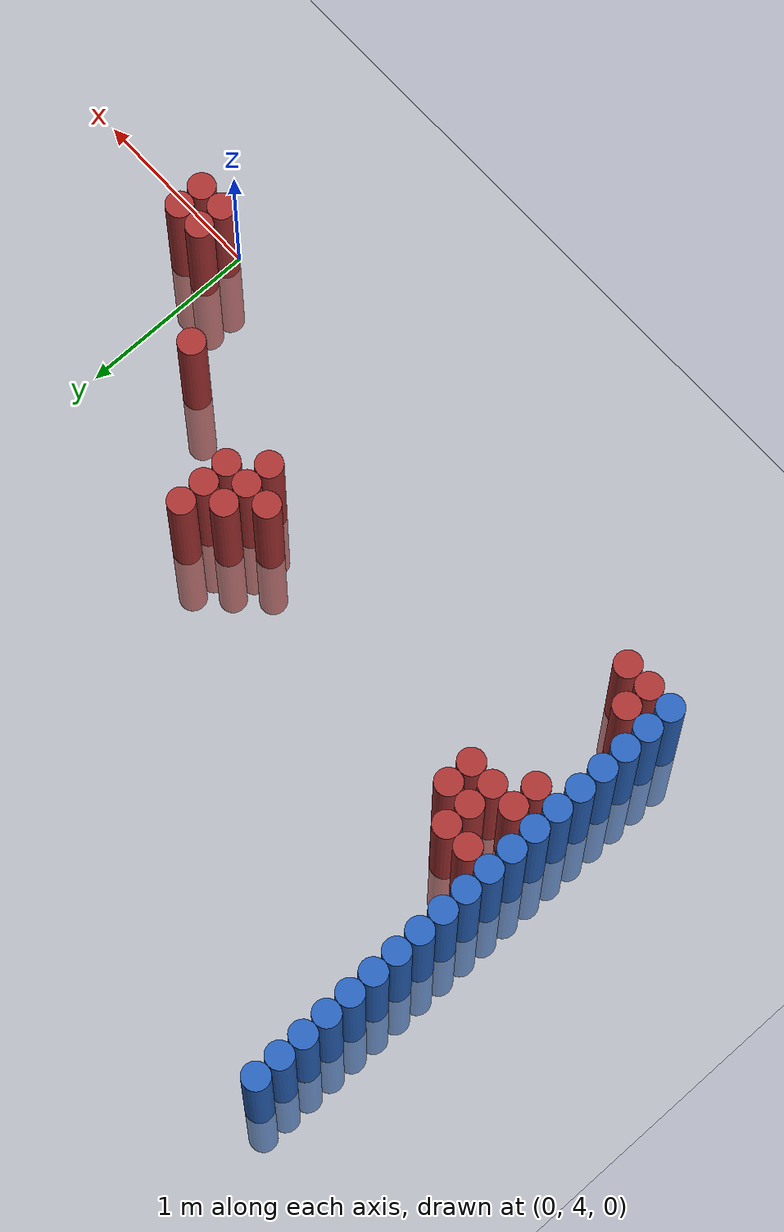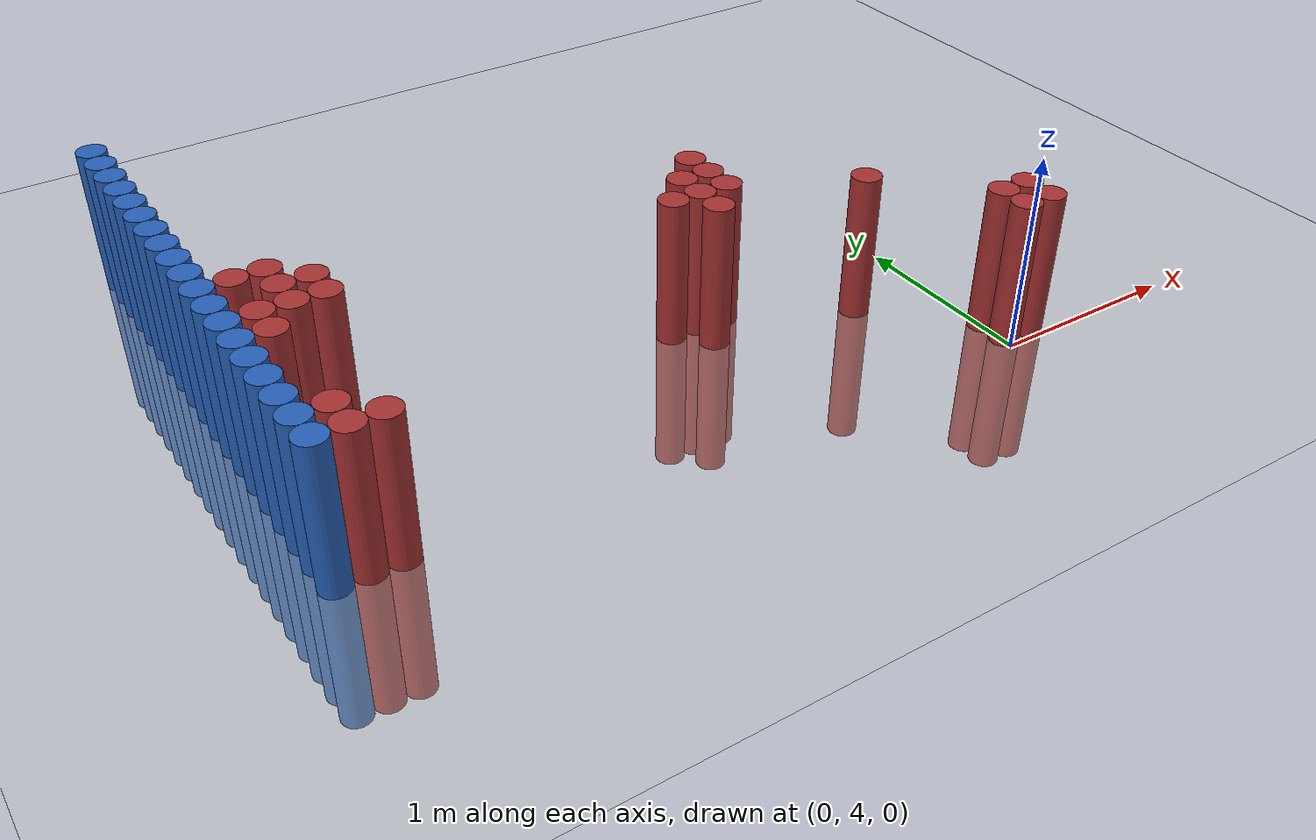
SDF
<sdf version="1.6">
 <world name="default">
  <model name="ground_plane">
   <static>1</static>
   <link name="link">
    <collision name="collision">
     <geometry><plane><normal>0 0 1</normal><size>100 100</size></plane></geometry>
     <surface><friction><ode><mu>100</mu><mu2>50</mu2></ode></friction></surface>
    </collision>
    <visual name="visual">
     <cast_shadows>0</cast_shadows>
     <geometry><plane><normal>0 0 1</normal><size>100 100</size></plane></geometry>
     <material>
      <script><uri>file://media/materials/scripts/gazebo.material</uri><name>Gazebo/Grey</name></script>
     </material>
    </visual>
   </link>
  </model>
  <model name="unit_cylinder_171">
   <static>1</static>
   <pose>-3.425000 4.225000 0.000000 0.000000 0.000000 0.000000</pose>
   <link name="link">
    <inertial>
     <mass>1</mass>
     <inertia><ixx>0.145833</ixx><ixy>0</ixy><ixz>0</ixz><iyy>0.145833</iyy><iyz>0</iyz><izz>0.125</izz></inertia>
    </inertial>
    <collision name="collision">
     <geometry><cylinder><radius>0.075000</radius><length>1.5</length></cylinder></geometry>
    </collision>
    <visual name="visual">
     <geometry><cylinder><radius>0.075000</radius><length>1.5</length></cylinder></geometry>
     <material>
      <ambient>0.152000 0.379000 0.720000 1</ambient>
      <diffuse>0.152000 0.379000 0.720000 1</diffuse>
     </material>
     <material>
      <script><name>Gazebo/Grey</name><uri>file://media/materials/scripts/gazebo.material</uri></script>
     </material>
    </visual>
   </link>
  </model>
  <model name="unit_cylinder_173">
   <static>1</static>
   <pose>-3.425000 4.375000 0.000000 0.000000 0.000000 0.000000</pose>
   <link name="link">
    <inertial>
     <mass>1</mass>
     <inertia><ixx>0.145833</ixx><ixy>0</ixy><ixz>0</ixz><iyy>0.145833</iyy><iyz>0</iyz><izz>0.125</izz></inertia>
    </inertial>
    <collision name="collision">
     <geometry><cylinder><radius>0.075000</radius><length>1.5</length></cylinder></geometry>
    </collision>
    <visual name="visual">
     <geometry><cylinder><radius>0.075000</radius><length>1.5</length></cylinder></geometry>
     <material>
      <ambient>0.152000 0.379000 0.720000 1</ambient>
      <diffuse>0.152000 0.379000 0.720000 1</diffuse>
     </material>
     <material>
      <script><name>Gazebo/Grey</name><uri>file://media/materials/scripts/gazebo.material</uri></script>
     </material>
    </visual>
   </link>
  </model>
  <model name="unit_cylinder_175">
   <static>1</static>
   <pose>-3.425000 4.525000 0.000000 0.000000 0.000000 0.000000</pose>
   <link name="link">
    <inertial>
     <mass>1</mass>
     <inertia><ixx>0.145833</ixx><ixy>0</ixy><ixz>0</ixz><iyy>0.145833</iyy><iyz>0</iyz><izz>0.125</izz></inertia>
    </inertial>
    <collision name="collision">
     <geometry><cylinder><radius>0.075000</radius><length>1.5</length></cylinder></geometry>
    </collision>
    <visual name="visual">
     <geometry><cylinder><radius>0.075000</radius><length>1.5</length></cylinder></geometry>
     <material>
      <ambient>0.152000 0.379000 0.720000 1</ambient>
      <diffuse>0.152000 0.379000 0.720000 1</diffuse>
     </material>
     <material>
      <script><name>Gazebo/Grey</name><uri>file://media/materials/scripts/gazebo.material</uri></script>
     </material>
    </visual>
   </link>
  </model>
  <model name="unit_cylinder_177">
   <static>1</static>
   <pose>-3.425000 4.675000 0.000000 0.000000 0.000000 0.000000</pose>
   <link name="link">
    <inertial>
     <mass>1</mass>
     <inertia><ixx>0.145833</ixx><ixy>0</ixy><ixz>0</ixz><iyy>0.145833</iyy><iyz>0</iyz><izz>0.125</izz></inertia>
    </inertial>
    <collision name="collision">
     <geometry><cylinder><radius>0.075000</radius><length>1.5</length></cylinder></geometry>
    </collision>
    <visual name="visual">
     <geometry><cylinder><radius>0.075000</radius><length>1.5</length></cylinder></geometry>
     <material>
      <ambient>0.152000 0.379000 0.720000 1</ambient>
      <diffuse>0.152000 0.379000 0.720000 1</diffuse>
     </material>
     <material>
      <script><name>Gazebo/Grey</name><uri>file://media/materials/scripts/gazebo.material</uri></script>
     </material>
    </visual>
   </link>
  </model>
  <model name="unit_cylinder_179">
   <static>1</static>
   <pose>-3.425000 4.825000 0.000000 0.000000 0.000000 0.000000</pose>
   <link name="link">
    <inertial>
     <mass>1</mass>
     <inertia><ixx>0.145833</ixx><ixy>0</ixy><ixz>0</ixz><iyy>0.145833</iyy><iyz>0</iyz><izz>0.125</izz></inertia>
    </inertial>
    <collision name="collision">
     <geometry><cylinder><radius>0.075000</radius><length>1.5</length></cylinder></geometry>
    </collision>
    <visual name="visual">
     <geometry><cylinder><radius>0.075000</radius><length>1.5</length></cylinder></geometry>
     <material>
      <ambient>0.152000 0.379000 0.720000 1</ambient>
      <diffuse>0.152000 0.379000 0.720000 1</diffuse>
     </material>
     <material>
      <script><name>Gazebo/Grey</name><uri>file://media/materials/scripts/gazebo.material</uri></script>
     </material>
    </visual>
   </link>
  </model>
  <model name="unit_cylinder_181">
   <static>1</static>
   <pose>-3.425000 4.975000 0.000000 0.000000 0.000000 0.000000</pose>
   <link name="link">
    <inertial>
     <mass>1</mass>
     <inertia><ixx>0.145833</ixx><ixy>0</ixy><ixz>0</ixz><iyy>0.145833</iyy><iyz>0</iyz><izz>0.125</izz></inertia>
    </inertial>
    <collision name="collision">
     <geometry><cylinder><radius>0.075000</radius><length>1.5</length></cylinder></geometry>
    </collision>
    <visual name="visual">
     <geometry><cylinder><radius>0.075000</radius><length>1.5</length></cylinder></geometry>
     <material>
      <ambient>0.152000 0.379000 0.720000 1</ambient>
      <diffuse>0.152000 0.379000 0.720000 1</diffuse>
     </material>
     <material>
      <script><name>Gazebo/Grey</name><uri>file://media/materials/scripts/gazebo.material</uri></script>
     </material>
    </visual>
   </link>
  </model>
  <model name="unit_cylinder_183">
   <static>1</static>
   <pose>-3.425000 5.125000 0.000000 0.000000 0.000000 0.000000</pose>
   <link name="link">
    <inertial>
     <mass>1</mass>
     <inertia><ixx>0.145833</ixx><ixy>0</ixy><ixz>0</ixz><iyy>0.145833</iyy><iyz>0</iyz><izz>0.125</izz></inertia>
    </inertial>
    <collision name="collision">
     <geometry><cylinder><radius>0.075000</radius><length>1.5</length></cylinder></geometry>
    </collision>
    <visual name="visual">
     <geometry><cylinder><radius>0.075000</radius><length>1.5</length></cylinder></geometry>
     <material>
      <ambient>0.152000 0.379000 0.720000 1</ambient>
      <diffuse>0.152000 0.379000 0.720000 1</diffuse>
     </material>
     <material>
      <script><name>Gazebo/Grey</name><uri>file://media/materials/scripts/gazebo.material</uri></script>
     </material>
    </visual>
   </link>
  </model>
  <model name="unit_cylinder_185">
   <static>1</static>
   <pose>-3.425000 5.275000 0.000000 0.000000 0.000000 0.000000</pose>
   <link name="link">
    <inertial>
     <mass>1</mass>
     <inertia><ixx>0.145833</ixx><ixy>0</ixy><ixz>0</ixz><iyy>0.145833</iyy><iyz>0</iyz><izz>0.125</izz></inertia>
    </inertial>
    <collision name="collision">
     <geometry><cylinder><radius>0.075000</radius><length>1.5</length></cylinder></geometry>
    </collision>
    <visual name="visual">
     <geometry><cylinder><radius>0.075000</radius><length>1.5</length></cylinder></geometry>
     <material>
      <ambient>0.152000 0.379000 0.720000 1</ambient>
      <diffuse>0.152000 0.379000 0.720000 1</diffuse>
     </material>
     <material>
      <script><name>Gazebo/Grey</name><uri>file://media/materials/scripts/gazebo.material</uri></script>
     </material>
    </visual>
   </link>
  </model>
  <model name="unit_cylinder_187">
   <static>1</static>
   <pose>-3.425000 5.425000 0.000000 0.000000 0.000000 0.000000</pose>
   <link name="link">
    <inertial>
     <mass>1</mass>
     <inertia><ixx>0.145833</ixx><ixy>0</ixy><ixz>0</ixz><iyy>0.145833</iyy><iyz>0</iyz><izz>0.125</izz></inertia>
    </inertial>
    <collision name="collision">
     <geometry><cylinder><radius>0.075000</radius><length>1.5</length></cylinder></geometry>
    </collision>
    <visual name="visual">
     <geometry><cylinder><radius>0.075000</radius><length>1.5</length></cylinder></geometry>
     <material>
      <ambient>0.152000 0.379000 0.720000 1</ambient>
      <diffuse>0.152000 0.379000 0.720000 1</diffuse>
     </material>
     <material>
      <script><name>Gazebo/Grey</name><uri>file://media/materials/scripts/gazebo.material</uri></script>
     </material>
    </visual>
   </link>
  </model>
  <model name="unit_cylinder_189">
   <static>1</static>
   <pose>-3.425000 5.575000 0.000000 0.000000 0.000000 0.000000</pose>
   <link name="link">
    <inertial>
     <mass>1</mass>
     <inertia><ixx>0.145833</ixx><ixy>0</ixy><ixz>0</ixz><iyy>0.145833</iyy><iyz>0</iyz><izz>0.125</izz></inertia>
    </inertial>
    <collision name="collision">
     <geometry><cylinder><radius>0.075000</radius><length>1.5</length></cylinder></geometry>
    </collision>
    <visual name="visual">
     <geometry><cylinder><radius>0.075000</radius><length>1.5</length></cylinder></geometry>
     <material>
      <ambient>0.152000 0.379000 0.720000 1</ambient>
      <diffuse>0.152000 0.379000 0.720000 1</diffuse>
     </material>
     <material>
      <script><name>Gazebo/Grey</name><uri>file://media/materials/scripts/gazebo.material</uri></script>
     </material>
    </visual>
   </link>
  </model>
  <model name="unit_cylinder_191">
   <static>1</static>
   <pose>-3.425000 5.725000 0.000000 0.000000 0.000000 0.000000</pose>
   <link name="link">
    <inertial>
     <mass>1</mass>
     <inertia><ixx>0.145833</ixx><ixy>0</ixy><ixz>0</ixz><iyy>0.145833</iyy><iyz>0</iyz><izz>0.125</izz></inertia>
    </inertial>
    <collision name="collision">
     <geometry><cylinder><radius>0.075000</radius><length>1.5</length></cylinder></geometry>
    </collision>
    <visual name="visual">
     <geometry><cylinder><radius>0.075000</radius><length>1.5</length></cylinder></geometry>
     <material>
      <ambient>0.152000 0.379000 0.720000 1</ambient>
      <diffuse>0.152000 0.379000 0.720000 1</diffuse>
     </material>
     <material>
      <script><name>Gazebo/Grey</name><uri>file://media/materials/scripts/gazebo.material</uri></script>
     </material>
    </visual>
   </link>
  </model>
  <model name="unit_cylinder_193">
   <static>1</static>
   <pose>-3.425000 5.875000 0.000000 0.000000 0.000000 0.000000</pose>
   <link name="link">
    <inertial>
     <mass>1</mass>
     <inertia><ixx>0.145833</ixx><ixy>0</ixy><ixz>0</ixz><iyy>0.145833</iyy><iyz>0</iyz><izz>0.125</izz></inertia>
    </inertial>
    <collision name="collision">
     <geometry><cylinder><radius>0.075000</radius><length>1.5</length></cylinder></geometry>
    </collision>
    <visual name="visual">
     <geometry><cylinder><radius>0.075000</radius><length>1.5</length></cylinder></geometry>
     <material>
      <ambient>0.152000 0.379000 0.720000 1</ambient>
      <diffuse>0.152000 0.379000 0.720000 1</diffuse>
     </material>
     <material>
      <script><name>Gazebo/Grey</name><uri>file://media/materials/scripts/gazebo.material</uri></script>
     </material>
    </visual>
   </link>
  </model>
  <model name="unit_cylinder_195">
   <static>1</static>
   <pose>-3.425000 6.025000 0.000000 0.000000 0.000000 0.000000</pose>
   <link name="link">
    <inertial>
     <mass>1</mass>
     <inertia><ixx>0.145833</ixx><ixy>0</ixy><ixz>0</ixz><iyy>0.145833</iyy><iyz>0</iyz><izz>0.125</izz></inertia>
    </inertial>
    <collision name="collision">
     <geometry><cylinder><radius>0.075000</radius><length>1.5</length></cylinder></geometry>
    </collision>
    <visual name="visual">
     <geometry><cylinder><radius>0.075000</radius><length>1.5</length></cylinder></geometry>
     <material>
      <ambient>0.152000 0.379000 0.720000 1</ambient>
      <diffuse>0.152000 0.379000 0.720000 1</diffuse>
     </material>
     <material>
      <script><name>Gazebo/Grey</name><uri>file://media/materials/scripts/gazebo.material</uri></script>
     </material>
    </visual>
   </link>
  </model>
  <model name="unit_cylinder_197">
   <static>1</static>
   <pose>-3.425000 6.175000 0.000000 0.000000 0.000000 0.000000</pose>
   <link name="link">
    <inertial>
     <mass>1</mass>
     <inertia><ixx>0.145833</ixx><ixy>0</ixy><ixz>0</ixz><iyy>0.145833</iyy><iyz>0</iyz><izz>0.125</izz></inertia>
    </inertial>
    <collision name="collision">
     <geometry><cylinder><radius>0.075000</radius><length>1.5</length></cylinder></geometry>
    </collision>
    <visual name="visual">
     <geometry><cylinder><radius>0.075000</radius><length>1.5</length></cylinder></geometry>
     <material>
      <ambient>0.152000 0.379000 0.720000 1</ambient>
      <diffuse>0.152000 0.379000 0.720000 1</diffuse>
     </material>
     <material>
      <script><name>Gazebo/Grey</name><uri>file://media/materials/scripts/gazebo.material</uri></script>
     </material>
    </visual>
   </link>
  </model>
  <model name="unit_cylinder_199">
   <static>1</static>
   <pose>-3.425000 6.325000 0.000000 0.000000 0.000000 0.000000</pose>
   <link name="link">
    <inertial>
     <mass>1</mass>
     <inertia><ixx>0.145833</ixx><ixy>0</ixy><ixz>0</ixz><iyy>0.145833</iyy><iyz>0</iyz><izz>0.125</izz></inertia>
    </inertial>
    <collision name="collision">
     <geometry><cylinder><radius>0.075000</radius><length>1.5</length></cylinder></geometry>
    </collision>
    <visual name="visual">
     <geometry><cylinder><radius>0.075000</radius><length>1.5</length></cylinder></geometry>
     <material>
      <ambient>0.152000 0.379000 0.720000 1</ambient>
      <diffuse>0.152000 0.379000 0.720000 1</diffuse>
     </material>
     <material>
      <script><name>Gazebo/Grey</name><uri>file://media/materials/scripts/gazebo.material</uri></script>
     </material>
    </visual>
   </link>
  </model>
  <model name="unit_cylinder_201">
   <static>1</static>
   <pose>-3.425000 6.475000 0.000000 0.000000 0.000000 0.000000</pose>
   <link name="link">
    <inertial>
     <mass>1</mass>
     <inertia><ixx>0.145833</ixx><ixy>0</ixy><ixz>0</ixz><iyy>0.145833</iyy><iyz>0</iyz><izz>0.125</izz></inertia>
    </inertial>
    <collision name="collision">
     <geometry><cylinder><radius>0.075000</radius><length>1.5</length></cylinder></geometry>
    </collision>
    <visual name="visual">
     <geometry><cylinder><radius>0.075000</radius><length>1.5</length></cylinder></geometry>
     <material>
      <ambient>0.152000 0.379000 0.720000 1</ambient>
      <diffuse>0.152000 0.379000 0.720000 1</diffuse>
     </material>
     <material>
      <script><name>Gazebo/Grey</name><uri>file://media/materials/scripts/gazebo.material</uri></script>
     </material>
    </visual>
   </link>
  </model>
  <model name="unit_cylinder_203">
   <static>1</static>
   <pose>-3.425000 6.625000 0.000000 0.000000 0.000000 0.000000</pose>
   <link name="link">
    <inertial>
     <mass>1</mass>
     <inertia><ixx>0.145833</ixx><ixy>0</ixy><ixz>0</ixz><iyy>0.145833</iyy><iyz>0</iyz><izz>0.125</izz></inertia>
    </inertial>
    <collision name="collision">
     <geometry><cylinder><radius>0.075000</radius><length>1.5</length></cylinder></geometry>
    </collision>
    <visual name="visual">
     <geometry><cylinder><radius>0.075000</radius><length>1.5</length></cylinder></geometry>
     <material>
      <ambient>0.152000 0.379000 0.720000 1</ambient>
      <diffuse>0.152000 0.379000 0.720000 1</diffuse>
     </material>
     <material>
      <script><name>Gazebo/Grey</name><uri>file://media/materials/scripts/gazebo.material</uri></script>
     </material>
    </visual>
   </link>
  </model>
  <model name="unit_cylinder_205">
   <static>1</static>
   <pose>-3.425000 6.775000 0.000000 0.000000 0.000000 0.000000</pose>
   <link name="link">
    <inertial>
     <mass>1</mass>
     <inertia><ixx>0.145833</ixx><ixy>0</ixy><ixz>0</ixz><iyy>0.145833</iyy><iyz>0</iyz><izz>0.125</izz></inertia>
    </inertial>
    <collision name="collision">
     <geometry><cylinder><radius>0.075000</radius><length>1.5</length></cylinder></geometry>
    </collision>
    <visual name="visual">
     <geometry><cylinder><radius>0.075000</radius><length>1.5</length></cylinder></geometry>
     <material>
      <ambient>0.152000 0.379000 0.720000 1</ambient>
      <diffuse>0.152000 0.379000 0.720000 1</diffuse>
     </material>
     <material>
      <script><name>Gazebo/Grey</name><uri>file://media/materials/scripts/gazebo.material</uri></script>
     </material>
    </visual>
   </link>
  </model>
  <model name="unit_cylinder_207">
   <static>1</static>
   <pose>-3.425000 6.925000 0.000000 0.000000 0.000000 0.000000</pose>
   <link name="link">
    <inertial>
     <mass>1</mass>
     <inertia><ixx>0.145833</ixx><ixy>0</ixy><ixz>0</ixz><iyy>0.145833</iyy><iyz>0</iyz><izz>0.125</izz></inertia>
    </inertial>
    <collision name="collision">
     <geometry><cylinder><radius>0.075000</radius><length>1.5</length></cylinder></geometry>
    </collision>
    <visual name="visual">
     <geometry><cylinder><radius>0.075000</radius><length>1.5</length></cylinder></geometry>
     <material>
      <ambient>0.152000 0.379000 0.720000 1</ambient>
      <diffuse>0.152000 0.379000 0.720000 1</diffuse>
     </material>
     <material>
      <script><name>Gazebo/Grey</name><uri>file://media/materials/scripts/gazebo.material</uri></script>
     </material>
    </visual>
   </link>
  </model>
  <model name="unit_cylinder_249">
   <static>1</static>
   <pose>-3.425000 4.225000 0.000000 0.000000 0.000000 0.000000</pose>
   <link name="link">
    <inertial>
     <mass>1</mass>
     <inertia><ixx>0.145833</ixx><ixy>0</ixy><ixz>0</ixz><iyy>0.145833</iyy><iyz>0</iyz><izz>0.125</izz></inertia>
    </inertial>
    <collision name="collision">
     <geometry><cylinder><radius>0.075000</radius><length>1.5</length></cylinder></geometry>
    </collision>
    <visual name="visual">
     <geometry><cylinder><radius>0.075000</radius><length>1.5</length></cylinder></geometry>
     <material>
      <ambient>0.152000 0.379000 0.720000 1</ambient>
      <diffuse>0.152000 0.379000 0.720000 1</diffuse>
     </material>
     <material>
      <script><name>Gazebo/Grey</name><uri>file://media/materials/scripts/gazebo.material</uri></script>
     </material>
    </visual>
   </link>
  </model>
  <model name="unit_cylinder_250">
   <static>1</static>
   <pose>-3.425000 4.375000 0.000000 0.000000 0.000000 0.000000</pose>
   <link name="link">
    <inertial>
     <mass>1</mass>
     <inertia><ixx>0.145833</ixx><ixy>0</ixy><ixz>0</ixz><iyy>0.145833</iyy><iyz>0</iyz><izz>0.125</izz></inertia>
    </inertial>
    <collision name="collision">
     <geometry><cylinder><radius>0.075000</radius><length>1.5</length></cylinder></geometry>
    </collision>
    <visual name="visual">
     <geometry><cylinder><radius>0.075000</radius><length>1.5</length></cylinder></geometry>
     <material>
      <ambient>0.152000 0.379000 0.720000 1</ambient>
      <diffuse>0.152000 0.379000 0.720000 1</diffuse>
     </material>
     <material>
      <script><name>Gazebo/Grey</name><uri>file://media/materials/scripts/gazebo.material</uri></script>
     </material>
    </visual>
   </link>
  </model>
  <model name="unit_cylinder_251">
   <static>1</static>
   <pose>-3.425000 4.525000 0.000000 0.000000 0.000000 0.000000</pose>
   <link name="link">
    <inertial>
     <mass>1</mass>
     <inertia><ixx>0.145833</ixx><ixy>0</ixy><ixz>0</ixz><iyy>0.145833</iyy><iyz>0</iyz><izz>0.125</izz></inertia>
    </inertial>
    <collision name="collision">
     <geometry><cylinder><radius>0.075000</radius><length>1.5</length></cylinder></geometry>
    </collision>
    <visual name="visual">
     <geometry><cylinder><radius>0.075000</radius><length>1.5</length></cylinder></geometry>
     <material>
      <ambient>0.152000 0.379000 0.720000 1</ambient>
      <diffuse>0.152000 0.379000 0.720000 1</diffuse>
     </material>
     <material>
      <script><name>Gazebo/Grey</name><uri>file://media/materials/scripts/gazebo.material</uri></script>
     </material>
    </visual>
   </link>
  </model>
  <model name="unit_cylinder_252">
   <static>1</static>
   <pose>-3.425000 4.675000 0.000000 0.000000 0.000000 0.000000</pose>
   <link name="link">
    <inertial>
     <mass>1</mass>
     <inertia><ixx>0.145833</ixx><ixy>0</ixy><ixz>0</ixz><iyy>0.145833</iyy><iyz>0</iyz><izz>0.125</izz></inertia>
    </inertial>
    <collision name="collision">
     <geometry><cylinder><radius>0.075000</radius><length>1.5</length></cylinder></geometry>
    </collision>
    <visual name="visual">
     <geometry><cylinder><radius>0.075000</radius><length>1.5</length></cylinder></geometry>
     <material>
      <ambient>0.152000 0.379000 0.720000 1</ambient>
      <diffuse>0.152000 0.379000 0.720000 1</diffuse>
     </material>
     <material>
      <script><name>Gazebo/Grey</name><uri>file://media/materials/scripts/gazebo.material</uri></script>
     </material>
    </visual>
   </link>
  </model>
  <model name="unit_cylinder_253">
   <static>1</static>
   <pose>-3.425000 4.825000 0.000000 0.000000 0.000000 0.000000</pose>
   <link name="link">
    <inertial>
     <mass>1</mass>
     <inertia><ixx>0.145833</ixx><ixy>0</ixy><ixz>0</ixz><iyy>0.145833</iyy><iyz>0</iyz><izz>0.125</izz></inertia>
    </inertial>
    <collision name="collision">
     <geometry><cylinder><radius>0.075000</radius><length>1.5</length></cylinder></geometry>
    </collision>
    <visual name="visual">
     <geometry><cylinder><radius>0.075000</radius><length>1.5</length></cylinder></geometry>
     <material>
      <ambient>0.152000 0.379000 0.720000 1</ambient>
      <diffuse>0.152000 0.379000 0.720000 1</diffuse>
     </material>
     <material>
      <script><name>Gazebo/Grey</name><uri>file://media/materials/scripts/gazebo.material</uri></script>
     </material>
    </visual>
   </link>
  </model>
  <model name="unit_cylinder_254">
   <static>1</static>
   <pose>-3.425000 4.975000 0.000000 0.000000 0.000000 0.000000</pose>
   <link name="link">
    <inertial>
     <mass>1</mass>
     <inertia><ixx>0.145833</ixx><ixy>0</ixy><ixz>0</ixz><iyy>0.145833</iyy><iyz>0</iyz><izz>0.125</izz></inertia>
    </inertial>
    <collision name="collision">
     <geometry><cylinder><radius>0.075000</radius><length>1.5</length></cylinder></geometry>
    </collision>
    <visual name="visual">
     <geometry><cylinder><radius>0.075000</radius><length>1.5</length></cylinder></geometry>
     <material>
      <ambient>0.152000 0.379000 0.720000 1</ambient>
      <diffuse>0.152000 0.379000 0.720000 1</diffuse>
     </material>
     <material>
      <script><name>Gazebo/Grey</name><uri>file://media/materials/scripts/gazebo.material</uri></script>
     </material>
    </visual>
   </link>
  </model>
  <model name="unit_cylinder_255">
   <static>1</static>
   <pose>-3.425000 5.125000 0.000000 0.000000 0.000000 0.000000</pose>
   <link name="link">
    <inertial>
     <mass>1</mass>
     <inertia><ixx>0.145833</ixx><ixy>0</ixy><ixz>0</ixz><iyy>0.145833</iyy><iyz>0</iyz><izz>0.125</izz></inertia>
    </inertial>
    <collision name="collision">
     <geometry><cylinder><radius>0.075000</radius><length>1.5</length></cylinder></geometry>
    </collision>
    <visual name="visual">
     <geometry><cylinder><radius>0.075000</radius><length>1.5</length></cylinder></geometry>
     <material>
      <ambient>0.152000 0.379000 0.720000 1</ambient>
      <diffuse>0.152000 0.379000 0.720000 1</diffuse>
     </material>
     <material>
      <script><name>Gazebo/Grey</name><uri>file://media/materials/scripts/gazebo.material</uri></script>
     </material>
    </visual>
   </link>
  </model>
  <model name="unit_cylinder_256">
   <static>1</static>
   <pose>-3.425000 5.275000 0.000000 0.000000 0.000000 0.000000</pose>
   <link name="link">
    <inertial>
     <mass>1</mass>
     <inertia><ixx>0.145833</ixx><ixy>0</ixy><ixz>0</ixz><iyy>0.145833</iyy><iyz>0</iyz><izz>0.125</izz></inertia>
    </inertial>
    <collision name="collision">
     <geometry><cylinder><radius>0.075000</radius><length>1.5</length></cylinder></geometry>
    </collision>
    <visual name="visual">
     <geometry><cylinder><radius>0.075000</radius><length>1.5</length></cylinder></geometry>
     <material>
      <ambient>0.152000 0.379000 0.720000 1</ambient>
      <diffuse>0.152000 0.379000 0.720000 1</diffuse>
     </material>
     <material>
      <script><name>Gazebo/Grey</name><uri>file://media/materials/scripts/gazebo.material</uri></script>
     </material>
    </visual>
   </link>
  </model>
  <model name="unit_cylinder_257">
   <static>1</static>
   <pose>-3.425000 5.425000 0.000000 0.000000 0.000000 0.000000</pose>
   <link name="link">
    <inertial>
     <mass>1</mass>
     <inertia><ixx>0.145833</ixx><ixy>0</ixy><ixz>0</ixz><iyy>0.145833</iyy><iyz>0</iyz><izz>0.125</izz></inertia>
    </inertial>
    <collision name="collision">
     <geometry><cylinder><radius>0.075000</radius><length>1.5</length></cylinder></geometry>
    </collision>
    <visual name="visual">
     <geometry><cylinder><radius>0.075000</radius><length>1.5</length></cylinder></geometry>
     <material>
      <ambient>0.152000 0.379000 0.720000 1</ambient>
      <diffuse>0.152000 0.379000 0.720000 1</diffuse>
     </material>
     <material>
      <script><name>Gazebo/Grey</name><uri>file://media/materials/scripts/gazebo.material</uri></script>
     </material>
    </visual>
   </link>
  </model>
  <model name="unit_cylinder_276">
   <static>1</static>
   <pose>-3.275000 4.225000 0.000000 0.000000 0.000000 0.000000</pose>
   <link name="link">
    <inertial>
     <mass>1</mass>
     <inertia><ixx>0.145833</ixx><ixy>0</ixy><ixz>0</ixz><iyy>0.145833</iyy><iyz>0</iyz><izz>0.125</izz></inertia>
    </inertial>
    <collision name="collision">
     <geometry><cylinder><radius>0.075000</radius><length>1.5</length></cylinder></geometry>
    </collision>
    <visual name="visual">
     <geometry><cylinder><radius>0.075000</radius><length>1.5</length></cylinder></geometry>
     <material>
      <ambient>0.648000 0.192000 0.192000 1</ambient>
      <diffuse>0.648000 0.192000 0.192000 1</diffuse>
     </material>
     <material>
      <script><name>Gazebo/Grey</name><uri>file://media/materials/scripts/gazebo.material</uri></script>
     </material>
    </visual>
   </link>
  </model>
  <model name="unit_cylinder_277">
   <static>1</static>
   <pose>-3.275000 4.375000 0.000000 0.000000 0.000000 0.000000</pose>
   <link name="link">
    <inertial>
     <mass>1</mass>
     <inertia><ixx>0.145833</ixx><ixy>0</ixy><ixz>0</ixz><iyy>0.145833</iyy><iyz>0</iyz><izz>0.125</izz></inertia>
    </inertial>
    <collision name="collision">
     <geometry><cylinder><radius>0.075000</radius><length>1.5</length></cylinder></geometry>
    </collision>
    <visual name="visual">
     <geometry><cylinder><radius>0.075000</radius><length>1.5</length></cylinder></geometry>
     <material>
      <ambient>0.648000 0.192000 0.192000 1</ambient>
      <diffuse>0.648000 0.192000 0.192000 1</diffuse>
     </material>
     <material>
      <script><name>Gazebo/Grey</name><uri>file://media/materials/scripts/gazebo.material</uri></script>
     </material>
    </visual>
   </link>
  </model>
  <model name="unit_cylinder_278">
   <static>1</static>
   <pose>-3.275000 4.975000 0.000000 0.000000 0.000000 0.000000</pose>
   <link name="link">
    <inertial>
     <mass>1</mass>
     <inertia><ixx>0.145833</ixx><ixy>0</ixy><ixz>0</ixz><iyy>0.145833</iyy><iyz>0</iyz><izz>0.125</izz></inertia>
    </inertial>
    <collision name="collision">
     <geometry><cylinder><radius>0.075000</radius><length>1.5</length></cylinder></geometry>
    </collision>
    <visual name="visual">
     <geometry><cylinder><radius>0.075000</radius><length>1.5</length></cylinder></geometry>
     <material>
      <ambient>0.648000 0.192000 0.192000 1</ambient>
      <diffuse>0.648000 0.192000 0.192000 1</diffuse>
     </material>
     <material>
      <script><name>Gazebo/Grey</name><uri>file://media/materials/scripts/gazebo.material</uri></script>
     </material>
    </visual>
   </link>
  </model>
  <model name="unit_cylinder_279">
   <static>1</static>
   <pose>-3.275000 5.125000 0.000000 0.000000 0.000000 0.000000</pose>
   <link name="link">
    <inertial>
     <mass>1</mass>
     <inertia><ixx>0.145833</ixx><ixy>0</ixy><ixz>0</ixz><iyy>0.145833</iyy><iyz>0</iyz><izz>0.125</izz></inertia>
    </inertial>
    <collision name="collision">
     <geometry><cylinder><radius>0.075000</radius><length>1.5</length></cylinder></geometry>
    </collision>
    <visual name="visual">
     <geometry><cylinder><radius>0.075000</radius><length>1.5</length></cylinder></geometry>
     <material>
      <ambient>0.648000 0.192000 0.192000 1</ambient>
      <diffuse>0.648000 0.192000 0.192000 1</diffuse>
     </material>
     <material>
      <script><name>Gazebo/Grey</name><uri>file://media/materials/scripts/gazebo.material</uri></script>
     </material>
    </visual>
   </link>
  </model>
  <model name="unit_cylinder_280">
   <static>1</static>
   <pose>-3.275000 5.425000 0.000000 0.000000 0.000000 0.000000</pose>
   <link name="link">
    <inertial>
     <mass>1</mass>
     <inertia><ixx>0.145833</ixx><ixy>0</ixy><ixz>0</ixz><iyy>0.145833</iyy><iyz>0</iyz><izz>0.125</izz></inertia>
    </inertial>
    <collision name="collision">
     <geometry><cylinder><radius>0.075000</radius><length>1.5</length></cylinder></geometry>
    </collision>
    <visual name="visual">
     <geometry><cylinder><radius>0.075000</radius><length>1.5</length></cylinder></geometry>
     <material>
      <ambient>0.648000 0.192000 0.192000 1</ambient>
      <diffuse>0.648000 0.192000 0.192000 1</diffuse>
     </material>
     <material>
      <script><name>Gazebo/Grey</name><uri>file://media/materials/scripts/gazebo.material</uri></script>
     </material>
    </visual>
   </link>
  </model>
  <model name="unit_cylinder_288">
   <static>1</static>
   <pose>-3.125000 4.225000 0.000000 0.000000 0.000000 0.000000</pose>
   <link name="link">
    <inertial>
     <mass>1</mass>
     <inertia><ixx>0.145833</ixx><ixy>0</ixy><ixz>0</ixz><iyy>0.145833</iyy><iyz>0</iyz><izz>0.125</izz></inertia>
    </inertial>
    <collision name="collision">
     <geometry><cylinder><radius>0.075000</radius><length>1.5</length></cylinder></geometry>
    </collision>
    <visual name="visual">
     <geometry><cylinder><radius>0.075000</radius><length>1.5</length></cylinder></geometry>
     <material>
      <ambient>0.648000 0.192000 0.192000 1</ambient>
      <diffuse>0.648000 0.192000 0.192000 1</diffuse>
     </material>
     <material>
      <script><name>Gazebo/Grey</name><uri>file://media/materials/scripts/gazebo.material</uri></script>
     </material>
    </visual>
   </link>
  </model>
  <model name="unit_cylinder_289">
   <static>1</static>
   <pose>-3.125000 5.125000 0.000000 0.000000 0.000000 0.000000</pose>
   <link name="link">
    <inertial>
     <mass>1</mass>
     <inertia><ixx>0.145833</ixx><ixy>0</ixy><ixz>0</ixz><iyy>0.145833</iyy><iyz>0</iyz><izz>0.125</izz></inertia>
    </inertial>
    <collision name="collision">
     <geometry><cylinder><radius>0.075000</radius><length>1.5</length></cylinder></geometry>
    </collision>
    <visual name="visual">
     <geometry><cylinder><radius>0.075000</radius><length>1.5</length></cylinder></geometry>
     <material>
      <ambient>0.648000 0.192000 0.192000 1</ambient>
      <diffuse>0.648000 0.192000 0.192000 1</diffuse>
     </material>
     <material>
      <script><name>Gazebo/Grey</name><uri>file://media/materials/scripts/gazebo.material</uri></script>
     </material>
    </visual>
   </link>
  </model>
  <model name="unit_cylinder_290">
   <static>1</static>
   <pose>-3.125000 5.275000 0.000000 0.000000 0.000000 0.000000</pose>
   <link name="link">
    <inertial>
     <mass>1</mass>
     <inertia><ixx>0.145833</ixx><ixy>0</ixy><ixz>0</ixz><iyy>0.145833</iyy><iyz>0</iyz><izz>0.125</izz></inertia>
    </inertial>
    <collision name="collision">
     <geometry><cylinder><radius>0.075000</radius><length>1.5</length></cylinder></geometry>
    </collision>
    <visual name="visual">
     <geometry><cylinder><radius>0.075000</radius><length>1.5</length></cylinder></geometry>
     <material>
      <ambient>0.648000 0.192000 0.192000 1</ambient>
      <diffuse>0.648000 0.192000 0.192000 1</diffuse>
     </material>
     <material>
      <script><name>Gazebo/Grey</name><uri>file://media/materials/scripts/gazebo.material</uri></script>
     </material>
    </visual>
   </link>
  </model>
  <model name="unit_cylinder_291">
   <static>1</static>
   <pose>-3.125000 5.425000 0.000000 0.000000 0.000000 0.000000</pose>
   <link name="link">
    <inertial>
     <mass>1</mass>
     <inertia><ixx>0.145833</ixx><ixy>0</ixy><ixz>0</ixz><iyy>0.145833</iyy><iyz>0</iyz><izz>0.125</izz></inertia>
    </inertial>
    <collision name="collision">
     <geometry><cylinder><radius>0.075000</radius><length>1.5</length></cylinder></geometry>
    </collision>
    <visual name="visual">
     <geometry><cylinder><radius>0.075000</radius><length>1.5</length></cylinder></geometry>
     <material>
      <ambient>0.648000 0.192000 0.192000 1</ambient>
      <diffuse>0.648000 0.192000 0.192000 1</diffuse>
     </material>
     <material>
      <script><name>Gazebo/Grey</name><uri>file://media/materials/scripts/gazebo.material</uri></script>
     </material>
    </visual>
   </link>
  </model>
  <model name="unit_cylinder_294">
   <static>1</static>
   <pose>-2.975000 5.125000 0.000000 0.000000 0.000000 0.000000</pose>
   <link name="link">
    <inertial>
     <mass>1</mass>
     <inertia><ixx>0.145833</ixx><ixy>0</ixy><ixz>0</ixz><iyy>0.145833</iyy><iyz>0</iyz><izz>0.125</izz></inertia>
    </inertial>
    <collision name="collision">
     <geometry><cylinder><radius>0.075000</radius><length>1.5</length></cylinder></geometry>
    </collision>
    <visual name="visual">
     <geometry><cylinder><radius>0.075000</radius><length>1.5</length></cylinder></geometry>
     <material>
      <ambient>0.648000 0.192000 0.192000 1</ambient>
      <diffuse>0.648000 0.192000 0.192000 1</diffuse>
     </material>
     <material>
      <script><name>Gazebo/Grey</name><uri>file://media/materials/scripts/gazebo.material</uri></script>
     </material>
    </visual>
   </link>
  </model>
  <model name="unit_cylinder_295">
   <static>1</static>
   <pose>-2.975000 5.275000 0.000000 0.000000 0.000000 0.000000</pose>
   <link name="link">
    <inertial>
     <mass>1</mass>
     <inertia><ixx>0.145833</ixx><ixy>0</ixy><ixz>0</ixz><iyy>0.145833</iyy><iyz>0</iyz><izz>0.125</izz></inertia>
    </inertial>
    <collision name="collision">
     <geometry><cylinder><radius>0.075000</radius><length>1.5</length></cylinder></geometry>
    </collision>
    <visual name="visual">
     <geometry><cylinder><radius>0.075000</radius><length>1.5</length></cylinder></geometry>
     <material>
      <ambient>0.648000 0.192000 0.192000 1</ambient>
      <diffuse>0.648000 0.192000 0.192000 1</diffuse>
     </material>
     <material>
      <script><name>Gazebo/Grey</name><uri>file://media/materials/scripts/gazebo.material</uri></script>
     </material>
    </visual>
   </link>
  </model>
  <model name="unit_cylinder_317">
   <static>1</static>
   <pose>-1.325000 4.975000 0.000000 0.000000 0.000000 0.000000</pose>
   <link name="link">
    <inertial>
     <mass>1</mass>
     <inertia><ixx>0.145833</ixx><ixy>0</ixy><ixz>0</ixz><iyy>0.145833</iyy><iyz>0</iyz><izz>0.125</izz></inertia>
    </inertial>
    <collision name="collision">
     <geometry><cylinder><radius>0.075000</radius><length>1.5</length></cylinder></geometry>
    </collision>
    <visual name="visual">
     <geometry><cylinder><radius>0.075000</radius><length>1.5</length></cylinder></geometry>
     <material>
      <ambient>0.648000 0.192000 0.192000 1</ambient>
      <diffuse>0.648000 0.192000 0.192000 1</diffuse>
     </material>
     <material>
      <script><name>Gazebo/Grey</name><uri>file://media/materials/scripts/gazebo.material</uri></script>
     </material>
    </visual>
   </link>
  </model>
  <model name="unit_cylinder_324">
   <static>1</static>
   <pose>-1.175000 4.825000 0.000000 0.000000 0.000000 0.000000</pose>
   <link name="link">
    <inertial>
     <mass>1</mass>
     <inertia><ixx>0.145833</ixx><ixy>0</ixy><ixz>0</ixz><iyy>0.145833</iyy><iyz>0</iyz><izz>0.125</izz></inertia>
    </inertial>
    <collision name="collision">
     <geometry><cylinder><radius>0.075000</radius><length>1.5</length></cylinder></geometry>
    </collision>
    <visual name="visual">
     <geometry><cylinder><radius>0.075000</radius><length>1.5</length></cylinder></geometry>
     <material>
      <ambient>0.648000 0.192000 0.192000 1</ambient>
      <diffuse>0.648000 0.192000 0.192000 1</diffuse>
     </material>
     <material>
      <script><name>Gazebo/Grey</name><uri>file://media/materials/scripts/gazebo.material</uri></script>
     </material>
    </visual>
   </link>
  </model>
  <model name="unit_cylinder_325">
   <static>1</static>
   <pose>-1.175000 4.975000 0.000000 0.000000 0.000000 0.000000</pose>
   <link name="link">
    <inertial>
     <mass>1</mass>
     <inertia><ixx>0.145833</ixx><ixy>0</ixy><ixz>0</ixz><iyy>0.145833</iyy><iyz>0</iyz><izz>0.125</izz></inertia>
    </inertial>
    <collision name="collision">
     <geometry><cylinder><radius>0.075000</radius><length>1.5</length></cylinder></geometry>
    </collision>
    <visual name="visual">
     <geometry><cylinder><radius>0.075000</radius><length>1.5</length></cylinder></geometry>
     <material>
      <ambient>0.648000 0.192000 0.192000 1</ambient>
      <diffuse>0.648000 0.192000 0.192000 1</diffuse>
     </material>
     <material>
      <script><name>Gazebo/Grey</name><uri>file://media/materials/scripts/gazebo.material</uri></script>
     </material>
    </visual>
   </link>
  </model>
  <model name="unit_cylinder_326">
   <static>1</static>
   <pose>-1.175000 5.125000 0.000000 0.000000 0.000000 0.000000</pose>
   <link name="link">
    <inertial>
     <mass>1</mass>
     <inertia><ixx>0.145833</ixx><ixy>0</ixy><ixz>0</ixz><iyy>0.145833</iyy><iyz>0</iyz><izz>0.125</izz></inertia>
    </inertial>
    <collision name="collision">
     <geometry><cylinder><radius>0.075000</radius><length>1.5</length></cylinder></geometry>
    </collision>
    <visual name="visual">
     <geometry><cylinder><radius>0.075000</radius><length>1.5</length></cylinder></geometry>
     <material>
      <ambient>0.648000 0.192000 0.192000 1</ambient>
      <diffuse>0.648000 0.192000 0.192000 1</diffuse>
     </material>
     <material>
      <script><name>Gazebo/Grey</name><uri>file://media/materials/scripts/gazebo.material</uri></script>
     </material>
    </visual>
   </link>
  </model>
  <model name="unit_cylinder_332">
   <static>1</static>
   <pose>-1.025000 4.975000 0.000000 0.000000 0.000000 0.000000</pose>
   <link name="link">
    <inertial>
     <mass>1</mass>
     <inertia><ixx>0.145833</ixx><ixy>0</ixy><ixz>0</ixz><iyy>0.145833</iyy><iyz>0</iyz><izz>0.125</izz></inertia>
    </inertial>
    <collision name="collision">
     <geometry><cylinder><radius>0.075000</radius><length>1.5</length></cylinder></geometry>
    </collision>
    <visual name="visual">
     <geometry><cylinder><radius>0.075000</radius><length>1.5</length></cylinder></geometry>
     <material>
      <ambient>0.648000 0.192000 0.192000 1</ambient>
      <diffuse>0.648000 0.192000 0.192000 1</diffuse>
     </material>
     <material>
      <script><name>Gazebo/Grey</name><uri>file://media/materials/scripts/gazebo.material</uri></script>
     </material>
    </visual>
   </link>
  </model>
  <model name="unit_cylinder_333">
   <static>1</static>
   <pose>-1.025000 5.125000 0.000000 0.000000 0.000000 0.000000</pose>
   <link name="link">
    <inertial>
     <mass>1</mass>
     <inertia><ixx>0.145833</ixx><ixy>0</ixy><ixz>0</ixz><iyy>0.145833</iyy><iyz>0</iyz><izz>0.125</izz></inertia>
    </inertial>
    <collision name="collision">
     <geometry><cylinder><radius>0.075000</radius><length>1.5</length></cylinder></geometry>
    </collision>
    <visual name="visual">
     <geometry><cylinder><radius>0.075000</radius><length>1.5</length></cylinder></geometry>
     <material>
      <ambient>0.648000 0.192000 0.192000 1</ambient>
      <diffuse>0.648000 0.192000 0.192000 1</diffuse>
     </material>
     <material>
      <script><name>Gazebo/Grey</name><uri>file://media/materials/scripts/gazebo.material</uri></script>
     </material>
    </visual>
   </link>
  </model>
  <model name="unit_cylinder_334">
   <static>1</static>
   <pose>-1.025000 5.275000 0.000000 0.000000 0.000000 0.000000</pose>
   <link name="link">
    <inertial>
     <mass>1</mass>
     <inertia><ixx>0.145833</ixx><ixy>0</ixy><ixz>0</ixz><iyy>0.145833</iyy><iyz>0</iyz><izz>0.125</izz></inertia>
    </inertial>
    <collision name="collision">
     <geometry><cylinder><radius>0.075000</radius><length>1.5</length></cylinder></geometry>
    </collision>
    <visual name="visual">
     <geometry><cylinder><radius>0.075000</radius><length>1.5</length></cylinder></geometry>
     <material>
      <ambient>0.648000 0.192000 0.192000 1</ambient>
      <diffuse>0.648000 0.192000 0.192000 1</diffuse>
     </material>
     <material>
      <script><name>Gazebo/Grey</name><uri>file://media/materials/scripts/gazebo.material</uri></script>
     </material>
    </visual>
   </link>
  </model>
  <model name="unit_cylinder_346">
   <static>1</static>
   <pose>-0.425000 4.675000 0.000000 0.000000 0.000000 0.000000</pose>
   <link name="link">
    <inertial>
     <mass>1</mass>
     <inertia><ixx>0.145833</ixx><ixy>0</ixy><ixz>0</ixz><iyy>0.145833</iyy><iyz>0</iyz><izz>0.125</izz></inertia>
    </inertial>
    <collision name="collision">
     <geometry><cylinder><radius>0.075000</radius><length>1.5</length></cylinder></geometry>
    </collision>
    <visual name="visual">
     <geometry><cylinder><radius>0.075000</radius><length>1.5</length></cylinder></geometry>
     <material>
      <ambient>0.648000 0.192000 0.192000 1</ambient>
      <diffuse>0.648000 0.192000 0.192000 1</diffuse>
     </material>
     <material>
      <script><name>Gazebo/Grey</name><uri>file://media/materials/scripts/gazebo.material</uri></script>
     </material>
    </visual>
   </link>
  </model>
  <model name="unit_cylinder_361">
   <static>1</static>
   <pose>0.025000 4.075000 0.000000 0.000000 0.000000 0.000000</pose>
   <link name="link">
    <inertial>
     <mass>1</mass>
     <inertia><ixx>0.145833</ixx><ixy>0</ixy><ixz>0</ixz><iyy>0.145833</iyy><iyz>0</iyz><izz>0.125</izz></inertia>
    </inertial>
    <collision name="collision">
     <geometry><cylinder><radius>0.075000</radius><length>1.5</length></cylinder></geometry>
    </collision>
    <visual name="visual">
     <geometry><cylinder><radius>0.075000</radius><length>1.5</length></cylinder></geometry>
     <material>
      <ambient>0.648000 0.192000 0.192000 1</ambient>
      <diffuse>0.648000 0.192000 0.192000 1</diffuse>
     </material>
     <material>
      <script><name>Gazebo/Grey</name><uri>file://media/materials/scripts/gazebo.material</uri></script>
     </material>
    </visual>
   </link>
  </model>
  <model name="unit_cylinder_362">
   <static>1</static>
   <pose>0.025000 4.225000 0.000000 0.000000 0.000000 0.000000</pose>
   <link name="link">
    <inertial>
     <mass>1</mass>
     <inertia><ixx>0.145833</ixx><ixy>0</ixy><ixz>0</ixz><iyy>0.145833</iyy><iyz>0</iyz><izz>0.125</izz></inertia>
    </inertial>
    <collision name="collision">
     <geometry><cylinder><radius>0.075000</radius><length>1.5</length></cylinder></geometry>
    </collision>
    <visual name="visual">
     <geometry><cylinder><radius>0.075000</radius><length>1.5</length></cylinder></geometry>
     <material>
      <ambient>0.648000 0.192000 0.192000 1</ambient>
      <diffuse>0.648000 0.192000 0.192000 1</diffuse>
     </material>
     <material>
      <script><name>Gazebo/Grey</name><uri>file://media/materials/scripts/gazebo.material</uri></script>
     </material>
    </visual>
   </link>
  </model>
  <model name="unit_cylinder_366">
   <static>1</static>
   <pose>0.175000 4.075000 0.000000 0.000000 0.000000 0.000000</pose>
   <link name="link">
    <inertial>
     <mass>1</mass>
     <inertia><ixx>0.145833</ixx><ixy>0</ixy><ixz>0</ixz><iyy>0.145833</iyy><iyz>0</iyz><izz>0.125</izz></inertia>
    </inertial>
    <collision name="collision">
     <geometry><cylinder><radius>0.075000</radius><length>1.5</length></cylinder></geometry>
    </collision>
    <visual name="visual">
     <geometry><cylinder><radius>0.075000</radius><length>1.5</length></cylinder></geometry>
     <material>
      <ambient>0.648000 0.192000 0.192000 1</ambient>
      <diffuse>0.648000 0.192000 0.192000 1</diffuse>
     </material>
     <material>
      <script><name>Gazebo/Grey</name><uri>file://media/materials/scripts/gazebo.material</uri></script>
     </material>
    </visual>
   </link>
  </model>
  <model name="unit_cylinder_367">
   <static>1</static>
   <pose>0.175000 4.225000 0.000000 0.000000 0.000000 0.000000</pose>
   <link name="link">
    <inertial>
     <mass>1</mass>
     <inertia><ixx>0.145833</ixx><ixy>0</ixy><ixz>0</ixz><iyy>0.145833</iyy><iyz>0</iyz><izz>0.125</izz></inertia>
    </inertial>
    <collision name="collision">
     <geometry><cylinder><radius>0.075000</radius><length>1.5</length></cylinder></geometry>
    </collision>
    <visual name="visual">
     <geometry><cylinder><radius>0.075000</radius><length>1.5</length></cylinder></geometry>
     <material>
      <ambient>0.648000 0.192000 0.192000 1</ambient>
      <diffuse>0.648000 0.192000 0.192000 1</diffuse>
     </material>
     <material>
      <script><name>Gazebo/Grey</name><uri>file://media/materials/scripts/gazebo.material</uri></script>
     </material>
    </visual>
   </link>
  </model>
 </world>
</sdf>
